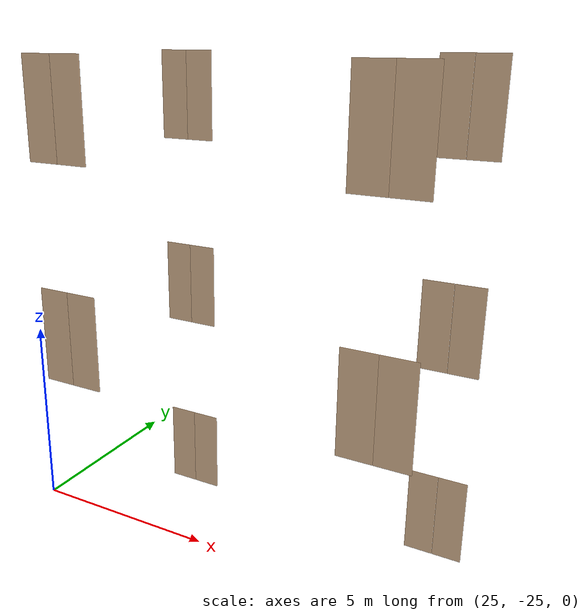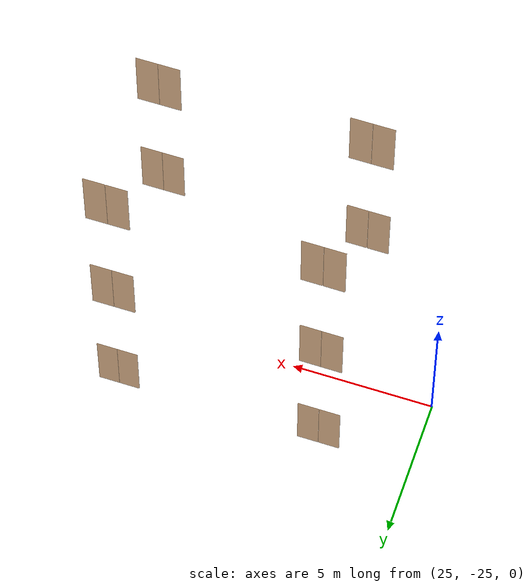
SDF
<sdf version="1.7">
 <world name="sim_world">
  <model name="p10">
   <pose>35.435105626499976 -22.487155936120427 0.0 0 0 3.141592653589793</pose>
   <link name="right">
    <pose>0.36420031999051794 0 1.11 0 0 0</pose>
    <visual name="right_visual">
     <geometry><box><size>0.7184006399810359 0.03 2.2</size></box></geometry>
     <material>
      <ambient>0.5 0.25 0 0.6</ambient>
      <diffuse>0.5 0.25 0 0.6</diffuse>
      <pbr><metal><metalness>0.0</metalness></metal></pbr>
     </material>
    </visual>
    <collision name="right_collision">
     <geometry><box><size>0.7184006399810359 0.03 2.2</size></box></geometry>
     <surface><contact><collide_bitmask>0x02</collide_bitmask></contact></surface>
    </collision>
    <inertial>
     <mass>50.0</mass>
     <inertia><ixx>20.17041666666667</ixx><iyy>22.31708116468818</iyy><izz>2.1541644980215082</izz></inertia>
    </inertial>
   </link>
   <joint name="right_joint" type="revolute">
    <parent>world</parent>
    <child>right</child>
    <axis><xyz>0 0 -1</xyz><limit><lower>0</lower><upper>1.57</upper></limit></axis>
    <pose>0.36420031999051794 0 0 0 0 0</pose>
   </joint>
   <link name="left">
    <pose>-0.36420031999051794 0 1.11 0 0 0</pose>
    <visual name="left_visual">
     <geometry><box><size>0.7184006399810359 0.03 2.2</size></box></geometry>
     <material>
      <ambient>0.5 0.25 0 0.6</ambient>
      <diffuse>0.5 0.25 0 0.6</diffuse>
      <pbr><metal><metalness>0.0</metalness></metal></pbr>
     </material>
    </visual>
    <collision name="left_collision">
     <geometry><box><size>0.7184006399810359 0.03 2.2</size></box></geometry>
     <surface><contact><collide_bitmask>0x02</collide_bitmask></contact></surface>
    </collision>
    <inertial>
     <mass>50.0</mass>
     <inertia><ixx>20.17041666666667</ixx><iyy>22.31708116468818</iyy><izz>2.1541644980215082</izz></inertia>
    </inertial>
   </link>
   <joint name="left_joint" type="revolute">
    <parent>world</parent>
    <child>left</child>
    <axis><xyz>0 0 -1</xyz><limit><lower>-1.57</lower><upper>0</upper></limit></axis>
    <pose>-0.36420031999051794 0 0 0 0 0</pose>
   </joint>
   <plugin name="register_component" filename="libregister_component.so">
    <component name="Door">
     <v_max_door>0.5</v_max_door>
     <a_max_door>0.3</a_max_door>
     <a_nom_door>0.15</a_nom_door>
     <dx_min_door>0.01</dx_min_door>
     <f_max_door>500.0</f_max_door>
     <ros_interface>true</ros_interface>
     <door name="p10" type="DoubleSwingDoor" left_joint_name="left_joint" right_joint_name="right_joint"/>
    </component>
   </plugin>
  </model>
  <model name="p11">
   <pose>28.260651536250798 -22.460001185150087 0.0 0 0 3.141592653589793</pose>
   <link name="right">
    <pose>0.3734333797517122 0 1.11 0 0 0</pose>
    <visual name="right_visual">
     <geometry><box><size>0.7368667595034244 0.03 2.2</size></box></geometry>
     <material>
      <ambient>0.5 0.25 0 0.6</ambient>
      <diffuse>0.5 0.25 0 0.6</diffuse>
      <pbr><metal><metalness>0.0</metalness></metal></pbr>
     </material>
    </visual>
    <collision name="right_collision">
     <geometry><box><size>0.7368667595034244 0.03 2.2</size></box></geometry>
     <surface><contact><collide_bitmask>0x02</collide_bitmask></contact></surface>
    </collision>
    <inertial>
     <mass>50.0</mass>
     <inertia><ixx>20.17041666666667</ixx><iyy>22.42905258858783</iyy><izz>2.2661359219211565</izz></inertia>
    </inertial>
   </link>
   <joint name="right_joint" type="revolute">
    <parent>world</parent>
    <child>right</child>
    <axis><xyz>0 0 -1</xyz><limit><lower>0</lower><upper>1.57</upper></limit></axis>
    <pose>0.3734333797517122 0 0 0 0 0</pose>
   </joint>
   <link name="left">
    <pose>-0.3734333797517122 0 1.11 0 0 0</pose>
    <visual name="left_visual">
     <geometry><box><size>0.7368667595034244 0.03 2.2</size></box></geometry>
     <material>
      <ambient>0.5 0.25 0 0.6</ambient>
      <diffuse>0.5 0.25 0 0.6</diffuse>
      <pbr><metal><metalness>0.0</metalness></metal></pbr>
     </material>
    </visual>
    <collision name="left_collision">
     <geometry><box><size>0.7368667595034244 0.03 2.2</size></box></geometry>
     <surface><contact><collide_bitmask>0x02</collide_bitmask></contact></surface>
    </collision>
    <inertial>
     <mass>50.0</mass>
     <inertia><ixx>20.17041666666667</ixx><iyy>22.42905258858783</iyy><izz>2.2661359219211565</izz></inertia>
    </inertial>
   </link>
   <joint name="left_joint" type="revolute">
    <parent>world</parent>
    <child>left</child>
    <axis><xyz>0 0 -1</xyz><limit><lower>-1.57</lower><upper>0</upper></limit></axis>
    <pose>-0.3734333797517122 0 0 0 0 0</pose>
   </joint>
   <plugin name="register_component" filename="libregister_component.so">
    <component name="Door">
     <v_max_door>0.5</v_max_door>
     <a_max_door>0.3</a_max_door>
     <a_nom_door>0.15</a_nom_door>
     <dx_min_door>0.01</dx_min_door>
     <f_max_door>500.0</f_max_door>
     <ros_interface>true</ros_interface>
     <door name="p11" type="DoubleSwingDoor" left_joint_name="left_joint" right_joint_name="right_joint"/>
    </component>
   </plugin>
  </model>
  <model name="puerta45">
   <pose>28.259387897762746 -22.49407264735302 5.0 0 0 3.136588864705221</pose>
   <link name="right">
    <pose>0.36848097701001953 0 1.11 0 0 0</pose>
    <visual name="right_visual">
     <geometry><box><size>0.726961954020039 0.03 2.2</size></box></geometry>
     <material>
      <ambient>0.5 0.25 0 0.6</ambient>
      <diffuse>0.5 0.25 0 0.6</diffuse>
      <pbr><metal><metalness>0.0</metalness></metal></pbr>
     </material>
    </visual>
    <collision name="right_collision">
     <geometry><box><size>0.726961954020039 0.03 2.2</size></box></geometry>
     <surface><contact><collide_bitmask>0x02</collide_bitmask></contact></surface>
    </collision>
    <inertial>
     <mass>50.0</mass>
     <inertia><ixx>20.17041666666667</ixx><iyy>22.368640344135976</iyy><izz>2.205723677469306</izz></inertia>
    </inertial>
   </link>
   <joint name="right_joint" type="revolute">
    <parent>world</parent>
    <child>right</child>
    <axis><xyz>0 0 -1</xyz><limit><lower>0</lower><upper>1.57</upper></limit></axis>
    <pose>0.36848097701001953 0 0 0 0 0</pose>
   </joint>
   <link name="left">
    <pose>-0.36848097701001953 0 1.11 0 0 0</pose>
    <visual name="left_visual">
     <geometry><box><size>0.726961954020039 0.03 2.2</size></box></geometry>
     <material>
      <ambient>0.5 0.25 0 0.6</ambient>
      <diffuse>0.5 0.25 0 0.6</diffuse>
      <pbr><metal><metalness>0.0</metalness></metal></pbr>
     </material>
    </visual>
    <collision name="left_collision">
     <geometry><box><size>0.726961954020039 0.03 2.2</size></box></geometry>
     <surface><contact><collide_bitmask>0x02</collide_bitmask></contact></surface>
    </collision>
    <inertial>
     <mass>50.0</mass>
     <inertia><ixx>20.17041666666667</ixx><iyy>22.368640344135976</iyy><izz>2.205723677469306</izz></inertia>
    </inertial>
   </link>
   <joint name="left_joint" type="revolute">
    <parent>world</parent>
    <child>left</child>
    <axis><xyz>0 0 -1</xyz><limit><lower>-1.57</lower><upper>0</upper></limit></axis>
    <pose>-0.36848097701001953 0 0 0 0 0</pose>
   </joint>
   <plugin name="register_component" filename="libregister_component.so">
    <component name="Door">
     <v_max_door>0.5</v_max_door>
     <a_max_door>0.3</a_max_door>
     <a_nom_door>0.15</a_nom_door>
     <dx_min_door>0.01</dx_min_door>
     <f_max_door>500.0</f_max_door>
     <ros_interface>true</ros_interface>
     <door name="puerta45" type="DoubleSwingDoor" left_joint_name="left_joint" right_joint_name="right_joint"/>
    </component>
   </plugin>
  </model>
  <model name="puerta46">
   <pose>35.420054664381766 -22.491098678373753 5.0 0 0 -3.141246343913633</pose>
   <link name="right">
    <pose>0.3737599510886825 0 1.11 0 0 0</pose>
    <visual name="right_visual">
     <geometry><box><size>0.737519902177365 0.03 2.2</size></box></geometry>
     <material>
      <ambient>0.5 0.25 0 0.6</ambient>
      <diffuse>0.5 0.25 0 0.6</diffuse>
      <pbr><metal><metalness>0.0</metalness></metal></pbr>
     </material>
    </visual>
    <collision name="right_collision">
     <geometry><box><size>0.737519902177365 0.03 2.2</size></box></geometry>
     <surface><contact><collide_bitmask>0x02</collide_bitmask></contact></surface>
    </collision>
    <inertial>
     <mass>50.0</mass>
     <inertia><ixx>20.17041666666667</ixx><iyy>22.433065025448798</iyy><izz>2.270148358782125</izz></inertia>
    </inertial>
   </link>
   <joint name="right_joint" type="revolute">
    <parent>world</parent>
    <child>right</child>
    <axis><xyz>0 0 -1</xyz><limit><lower>0</lower><upper>1.57</upper></limit></axis>
    <pose>0.3737599510886825 0 0 0 0 0</pose>
   </joint>
   <link name="left">
    <pose>-0.3737599510886825 0 1.11 0 0 0</pose>
    <visual name="left_visual">
     <geometry><box><size>0.737519902177365 0.03 2.2</size></box></geometry>
     <material>
      <ambient>0.5 0.25 0 0.6</ambient>
      <diffuse>0.5 0.25 0 0.6</diffuse>
      <pbr><metal><metalness>0.0</metalness></metal></pbr>
     </material>
    </visual>
    <collision name="left_collision">
     <geometry><box><size>0.737519902177365 0.03 2.2</size></box></geometry>
     <surface><contact><collide_bitmask>0x02</collide_bitmask></contact></surface>
    </collision>
    <inertial>
     <mass>50.0</mass>
     <inertia><ixx>20.17041666666667</ixx><iyy>22.433065025448798</iyy><izz>2.270148358782125</izz></inertia>
    </inertial>
   </link>
   <joint name="left_joint" type="revolute">
    <parent>world</parent>
    <child>left</child>
    <axis><xyz>0 0 -1</xyz><limit><lower>-1.57</lower><upper>0</upper></limit></axis>
    <pose>-0.3737599510886825 0 0 0 0 0</pose>
   </joint>
   <plugin name="register_component" filename="libregister_component.so">
    <component name="Door">
     <v_max_door>0.5</v_max_door>
     <a_max_door>0.3</a_max_door>
     <a_nom_door>0.15</a_nom_door>
     <dx_min_door>0.01</dx_min_door>
     <f_max_door>500.0</f_max_door>
     <ros_interface>true</ros_interface>
     <door name="puerta46" type="DoubleSwingDoor" left_joint_name="left_joint" right_joint_name="right_joint"/>
    </component>
   </plugin>
  </model>
  <model name="puerta47">
   <pose>28.231839364075064 -27.349800320129976 5.0 0 0 -0.0037874732707977882</pose>
   <link name="right">
    <pose>0.3764686956118843 0 1.11 0 0 0</pose>
    <visual name="right_visual">
     <geometry><box><size>0.7429373912237686 0.03 2.2</size></box></geometry>
     <material>
      <ambient>0.5 0.25 0 0.6</ambient>
      <diffuse>0.5 0.25 0 0.6</diffuse>
      <pbr><metal><metalness>0.0</metalness></metal></pbr>
     </material>
    </visual>
    <collision name="right_collision">
     <geometry><box><size>0.7429373912237686 0.03 2.2</size></box></geometry>
     <surface><contact><collide_bitmask>0x02</collide_bitmask></contact></surface>
    </collision>
    <inertial>
     <mass>50.0</mass>
     <inertia><ixx>20.17041666666667</ixx><iyy>22.46648319699325</iyy><izz>2.303566530326579</izz></inertia>
    </inertial>
   </link>
   <joint name="right_joint" type="revolute">
    <parent>world</parent>
    <child>right</child>
    <axis><xyz>0 0 -1</xyz><limit><lower>0</lower><upper>1.57</upper></limit></axis>
    <pose>0.3764686956118843 0 0 0 0 0</pose>
   </joint>
   <link name="left">
    <pose>-0.3764686956118843 0 1.11 0 0 0</pose>
    <visual name="left_visual">
     <geometry><box><size>0.7429373912237686 0.03 2.2</size></box></geometry>
     <material>
      <ambient>0.5 0.25 0 0.6</ambient>
      <diffuse>0.5 0.25 0 0.6</diffuse>
      <pbr><metal><metalness>0.0</metalness></metal></pbr>
     </material>
    </visual>
    <collision name="left_collision">
     <geometry><box><size>0.7429373912237686 0.03 2.2</size></box></geometry>
     <surface><contact><collide_bitmask>0x02</collide_bitmask></contact></surface>
    </collision>
    <inertial>
     <mass>50.0</mass>
     <inertia><ixx>20.17041666666667</ixx><iyy>22.46648319699325</iyy><izz>2.303566530326579</izz></inertia>
    </inertial>
   </link>
   <joint name="left_joint" type="revolute">
    <parent>world</parent>
    <child>left</child>
    <axis><xyz>0 0 -1</xyz><limit><lower>-1.57</lower><upper>0</upper></limit></axis>
    <pose>-0.3764686956118843 0 0 0 0 0</pose>
   </joint>
   <plugin name="register_component" filename="libregister_component.so">
    <component name="Door">
     <v_max_door>0.5</v_max_door>
     <a_max_door>0.3</a_max_door>
     <a_nom_door>0.15</a_nom_door>
     <dx_min_door>0.01</dx_min_door>
     <f_max_door>500.0</f_max_door>
     <ros_interface>true</ros_interface>
     <door name="puerta47" type="DoubleSwingDoor" left_joint_name="left_joint" right_joint_name="right_joint"/>
    </component>
   </plugin>
  </model>
  <model name="puerta48">
   <pose>35.42166583972822 -27.354733797723167 5.0 0 0 -0.003114518818914272</pose>
   <link name="right">
    <pose>0.3774845572477847 0 1.11 0 0 0</pose>
    <visual name="right_visual">
     <geometry><box><size>0.7449691144955694 0.03 2.2</size></box></geometry>
     <material>
      <ambient>0.5 0.25 0 0.6</ambient>
      <diffuse>0.5 0.25 0 0.6</diffuse>
      <pbr><metal><metalness>0.0</metalness></metal></pbr>
     </material>
    </visual>
    <collision name="right_collision">
     <geometry><box><size>0.7449691144955694 0.03 2.2</size></box></geometry>
     <surface><contact><collide_bitmask>0x02</collide_bitmask></contact></surface>
    </collision>
    <inertial>
     <mass>50.0</mass>
     <inertia><ixx>20.17041666666667</ixx><iyy>22.479079089801306</iyy><izz>2.3161624231346365</izz></inertia>
    </inertial>
   </link>
   <joint name="right_joint" type="revolute">
    <parent>world</parent>
    <child>right</child>
    <axis><xyz>0 0 -1</xyz><limit><lower>0</lower><upper>1.57</upper></limit></axis>
    <pose>0.3774845572477847 0 0 0 0 0</pose>
   </joint>
   <link name="left">
    <pose>-0.3774845572477847 0 1.11 0 0 0</pose>
    <visual name="left_visual">
     <geometry><box><size>0.7449691144955694 0.03 2.2</size></box></geometry>
     <material>
      <ambient>0.5 0.25 0 0.6</ambient>
      <diffuse>0.5 0.25 0 0.6</diffuse>
      <pbr><metal><metalness>0.0</metalness></metal></pbr>
     </material>
    </visual>
    <collision name="left_collision">
     <geometry><box><size>0.7449691144955694 0.03 2.2</size></box></geometry>
     <surface><contact><collide_bitmask>0x02</collide_bitmask></contact></surface>
    </collision>
    <inertial>
     <mass>50.0</mass>
     <inertia><ixx>20.17041666666667</ixx><iyy>22.479079089801306</iyy><izz>2.3161624231346365</izz></inertia>
    </inertial>
   </link>
   <joint name="left_joint" type="revolute">
    <parent>world</parent>
    <child>left</child>
    <axis><xyz>0 0 -1</xyz><limit><lower>-1.57</lower><upper>0</upper></limit></axis>
    <pose>-0.3774845572477847 0 0 0 0 0</pose>
   </joint>
   <plugin name="register_component" filename="libregister_component.so">
    <component name="Door">
     <v_max_door>0.5</v_max_door>
     <a_max_door>0.3</a_max_door>
     <a_nom_door>0.15</a_nom_door>
     <dx_min_door>0.01</dx_min_door>
     <f_max_door>500.0</f_max_door>
     <ros_interface>true</ros_interface>
     <door name="puerta48" type="DoubleSwingDoor" left_joint_name="left_joint" right_joint_name="right_joint"/>
    </component>
   </plugin>
  </model>
  <model name="puerta124">
   <pose>28.259192722469916 -22.493967445741337 10.0 0 0 3.1365905751820997</pose>
   <link name="right">
    <pose>0.368485283670544 0 1.11 0 0 0</pose>
    <visual name="right_visual">
     <geometry><box><size>0.726970567341088 0.03 2.2</size></box></geometry>
     <material>
      <ambient>0.5 0.25 0 0.6</ambient>
      <diffuse>0.5 0.25 0 0.6</diffuse>
      <pbr><metal><metalness>0.0</metalness></metal></pbr>
     </material>
    </visual>
    <collision name="right_collision">
     <geometry><box><size>0.726970567341088 0.03 2.2</size></box></geometry>
     <surface><contact><collide_bitmask>0x02</collide_bitmask></contact></surface>
    </collision>
    <inertial>
     <mass>50.0</mass>
     <inertia><ixx>20.17041666666667</ixx><iyy>22.368692524084267</iyy><izz>2.2057758574175974</izz></inertia>
    </inertial>
   </link>
   <joint name="right_joint" type="revolute">
    <parent>world</parent>
    <child>right</child>
    <axis><xyz>0 0 -1</xyz><limit><lower>0</lower><upper>1.57</upper></limit></axis>
    <pose>0.368485283670544 0 0 0 0 0</pose>
   </joint>
   <link name="left">
    <pose>-0.368485283670544 0 1.11 0 0 0</pose>
    <visual name="left_visual">
     <geometry><box><size>0.726970567341088 0.03 2.2</size></box></geometry>
     <material>
      <ambient>0.5 0.25 0 0.6</ambient>
      <diffuse>0.5 0.25 0 0.6</diffuse>
      <pbr><metal><metalness>0.0</metalness></metal></pbr>
     </material>
    </visual>
    <collision name="left_collision">
     <geometry><box><size>0.726970567341088 0.03 2.2</size></box></geometry>
     <surface><contact><collide_bitmask>0x02</collide_bitmask></contact></surface>
    </collision>
    <inertial>
     <mass>50.0</mass>
     <inertia><ixx>20.17041666666667</ixx><iyy>22.368692524084267</iyy><izz>2.2057758574175974</izz></inertia>
    </inertial>
   </link>
   <joint name="left_joint" type="revolute">
    <parent>world</parent>
    <child>left</child>
    <axis><xyz>0 0 -1</xyz><limit><lower>-1.57</lower><upper>0</upper></limit></axis>
    <pose>-0.368485283670544 0 0 0 0 0</pose>
   </joint>
   <plugin name="register_component" filename="libregister_component.so">
    <component name="Door">
     <v_max_door>0.5</v_max_door>
     <a_max_door>0.3</a_max_door>
     <a_nom_door>0.15</a_nom_door>
     <dx_min_door>0.01</dx_min_door>
     <f_max_door>500.0</f_max_door>
     <ros_interface>true</ros_interface>
     <door name="puerta124" type="DoubleSwingDoor" left_joint_name="left_joint" right_joint_name="right_joint"/>
    </component>
   </plugin>
  </model>
  <model name="puerta125">
   <pose>35.41994317504427 -22.490981193705373 10.0 0 0 -3.141244633436746</pose>
   <link name="right">
    <pose>0.3737643194477755 0 1.11 0 0 0</pose>
    <visual name="right_visual">
     <geometry><box><size>0.737528638895551 0.03 2.2</size></box></geometry>
     <material>
      <ambient>0.5 0.25 0 0.6</ambient>
      <diffuse>0.5 0.25 0 0.6</diffuse>
      <pbr><metal><metalness>0.0</metalness></metal></pbr>
     </material>
    </visual>
    <collision name="right_collision">
     <geometry><box><size>0.737528638895551 0.03 2.2</size></box></geometry>
     <surface><contact><collide_bitmask>0x02</collide_bitmask></contact></surface>
    </collision>
    <inertial>
     <mass>50.0</mass>
     <inertia><ixx>20.17041666666667</ixx><iyy>22.433118721629686</iyy><izz>2.270202054963017</izz></inertia>
    </inertial>
   </link>
   <joint name="right_joint" type="revolute">
    <parent>world</parent>
    <child>right</child>
    <axis><xyz>0 0 -1</xyz><limit><lower>0</lower><upper>1.57</upper></limit></axis>
    <pose>0.3737643194477755 0 0 0 0 0</pose>
   </joint>
   <link name="left">
    <pose>-0.3737643194477755 0 1.11 0 0 0</pose>
    <visual name="left_visual">
     <geometry><box><size>0.737528638895551 0.03 2.2</size></box></geometry>
     <material>
      <ambient>0.5 0.25 0 0.6</ambient>
      <diffuse>0.5 0.25 0 0.6</diffuse>
      <pbr><metal><metalness>0.0</metalness></metal></pbr>
     </material>
    </visual>
    <collision name="left_collision">
     <geometry><box><size>0.737528638895551 0.03 2.2</size></box></geometry>
     <surface><contact><collide_bitmask>0x02</collide_bitmask></contact></surface>
    </collision>
    <inertial>
     <mass>50.0</mass>
     <inertia><ixx>20.17041666666667</ixx><iyy>22.433118721629686</iyy><izz>2.270202054963017</izz></inertia>
    </inertial>
   </link>
   <joint name="left_joint" type="revolute">
    <parent>world</parent>
    <child>left</child>
    <axis><xyz>0 0 -1</xyz><limit><lower>-1.57</lower><upper>0</upper></limit></axis>
    <pose>-0.3737643194477755 0 0 0 0 0</pose>
   </joint>
   <plugin name="register_component" filename="libregister_component.so">
    <component name="Door">
     <v_max_door>0.5</v_max_door>
     <a_max_door>0.3</a_max_door>
     <a_nom_door>0.15</a_nom_door>
     <dx_min_door>0.01</dx_min_door>
     <f_max_door>500.0</f_max_door>
     <ros_interface>true</ros_interface>
     <door name="puerta125" type="DoubleSwingDoor" left_joint_name="left_joint" right_joint_name="right_joint"/>
    </component>
   </plugin>
  </model>
  <model name="puerta126">
   <pose>28.231652172512874 -27.34975191746537 10.0 0 0 -0.0037857627939128103</pose>
   <link name="right">
    <pose>0.3764730956297171 0 1.11 0 0 0</pose>
    <visual name="right_visual">
     <geometry><box><size>0.7429461912594342 0.03 2.2</size></box></geometry>
     <material>
      <ambient>0.5 0.25 0 0.6</ambient>
      <diffuse>0.5 0.25 0 0.6</diffuse>
      <pbr><metal><metalness>0.0</metalness></metal></pbr>
     </material>
    </visual>
    <collision name="right_collision">
     <geometry><box><size>0.7429461912594342 0.03 2.2</size></box></geometry>
     <surface><contact><collide_bitmask>0x02</collide_bitmask></contact></surface>
    </collision>
    <inertial>
     <mass>50.0</mass>
     <inertia><ixx>20.17041666666667</ixx><iyy>22.466537679612088</iyy><izz>2.303621012945416</izz></inertia>
    </inertial>
   </link>
   <joint name="right_joint" type="revolute">
    <parent>world</parent>
    <child>right</child>
    <axis><xyz>0 0 -1</xyz><limit><lower>0</lower><upper>1.57</upper></limit></axis>
    <pose>0.3764730956297171 0 0 0 0 0</pose>
   </joint>
   <link name="left">
    <pose>-0.3764730956297171 0 1.11 0 0 0</pose>
    <visual name="left_visual">
     <geometry><box><size>0.7429461912594342 0.03 2.2</size></box></geometry>
     <material>
      <ambient>0.5 0.25 0 0.6</ambient>
      <diffuse>0.5 0.25 0 0.6</diffuse>
      <pbr><metal><metalness>0.0</metalness></metal></pbr>
     </material>
    </visual>
    <collision name="left_collision">
     <geometry><box><size>0.7429461912594342 0.03 2.2</size></box></geometry>
     <surface><contact><collide_bitmask>0x02</collide_bitmask></contact></surface>
    </collision>
    <inertial>
     <mass>50.0</mass>
     <inertia><ixx>20.17041666666667</ixx><iyy>22.466537679612088</iyy><izz>2.303621012945416</izz></inertia>
    </inertial>
   </link>
   <joint name="left_joint" type="revolute">
    <parent>world</parent>
    <child>left</child>
    <axis><xyz>0 0 -1</xyz><limit><lower>-1.57</lower><upper>0</upper></limit></axis>
    <pose>-0.3764730956297171 0 0 0 0 0</pose>
   </joint>
   <plugin name="register_component" filename="libregister_component.so">
    <component name="Door">
     <v_max_door>0.5</v_max_door>
     <a_max_door>0.3</a_max_door>
     <a_nom_door>0.15</a_nom_door>
     <dx_min_door>0.01</dx_min_door>
     <f_max_door>500.0</f_max_door>
     <ros_interface>true</ros_interface>
     <door name="puerta126" type="DoubleSwingDoor" left_joint_name="left_joint" right_joint_name="right_joint"/>
    </component>
   </plugin>
  </model>
  <model name="puerta127">
   <pose>35.42156268845416 -27.354673154543377 10.0 0 0 -0.003112808342026486</pose>
   <link name="right">
    <pose>0.3774889691386062 0 1.11 0 0 0</pose>
    <visual name="right_visual">
     <geometry><box><size>0.7449779382772124 0.03 2.2</size></box></geometry>
     <material>
      <ambient>0.5 0.25 0 0.6</ambient>
      <diffuse>0.5 0.25 0 0.6</diffuse>
      <pbr><metal><metalness>0.0</metalness></metal></pbr>
     </material>
    </visual>
    <collision name="right_collision">
     <geometry><box><size>0.7449779382772124 0.03 2.2</size></box></geometry>
     <surface><contact><collide_bitmask>0x02</collide_bitmask></contact></surface>
    </collision>
    <inertial>
     <mass>50.0</mass>
     <inertia><ixx>20.17041666666667</ixx><iyy>22.479133868832363</iyy><izz>2.316217202165692</izz></inertia>
    </inertial>
   </link>
   <joint name="right_joint" type="revolute">
    <parent>world</parent>
    <child>right</child>
    <axis><xyz>0 0 -1</xyz><limit><lower>0</lower><upper>1.57</upper></limit></axis>
    <pose>0.3774889691386062 0 0 0 0 0</pose>
   </joint>
   <link name="left">
    <pose>-0.3774889691386062 0 1.11 0 0 0</pose>
    <visual name="left_visual">
     <geometry><box><size>0.7449779382772124 0.03 2.2</size></box></geometry>
     <material>
      <ambient>0.5 0.25 0 0.6</ambient>
      <diffuse>0.5 0.25 0 0.6</diffuse>
      <pbr><metal><metalness>0.0</metalness></metal></pbr>
     </material>
    </visual>
    <collision name="left_collision">
     <geometry><box><size>0.7449779382772124 0.03 2.2</size></box></geometry>
     <surface><contact><collide_bitmask>0x02</collide_bitmask></contact></surface>
    </collision>
    <inertial>
     <mass>50.0</mass>
     <inertia><ixx>20.17041666666667</ixx><iyy>22.479133868832363</iyy><izz>2.316217202165692</izz></inertia>
    </inertial>
   </link>
   <joint name="left_joint" type="revolute">
    <parent>world</parent>
    <child>left</child>
    <axis><xyz>0 0 -1</xyz><limit><lower>-1.57</lower><upper>0</upper></limit></axis>
    <pose>-0.3774889691386062 0 0 0 0 0</pose>
   </joint>
   <plugin name="register_component" filename="libregister_component.so">
    <component name="Door">
     <v_max_door>0.5</v_max_door>
     <a_max_door>0.3</a_max_door>
     <a_nom_door>0.15</a_nom_door>
     <dx_min_door>0.01</dx_min_door>
     <f_max_door>500.0</f_max_door>
     <ros_interface>true</ros_interface>
     <door name="puerta127" type="DoubleSwingDoor" left_joint_name="left_joint" right_joint_name="right_joint"/>
    </component>
   </plugin>
  </model>
 </world>
</sdf>
